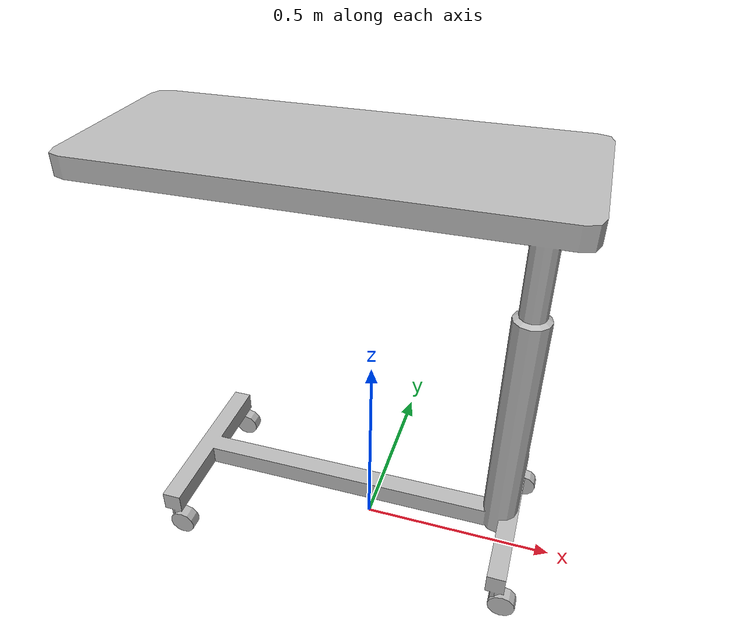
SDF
<?xml version="1.0"?>

<sdf version="1.6">
  <model name='BedTable'>
    <link name="body">
      <pose>0 0 0 0 0 0</pose>

      <visual name="visual">
        <geometry>
          <mesh>
            <uri>model://BedTable/meshes/BedTable.obj</uri>
          </mesh>
        </geometry>
      </visual>

      <collision name="collision">
        <geometry>
          <mesh>
            <uri>model://BedTable/meshes/BedTable_Col.obj</uri>
          </mesh>
        </geometry>
      </collision>

    </link>
  </model>
</sdf>
